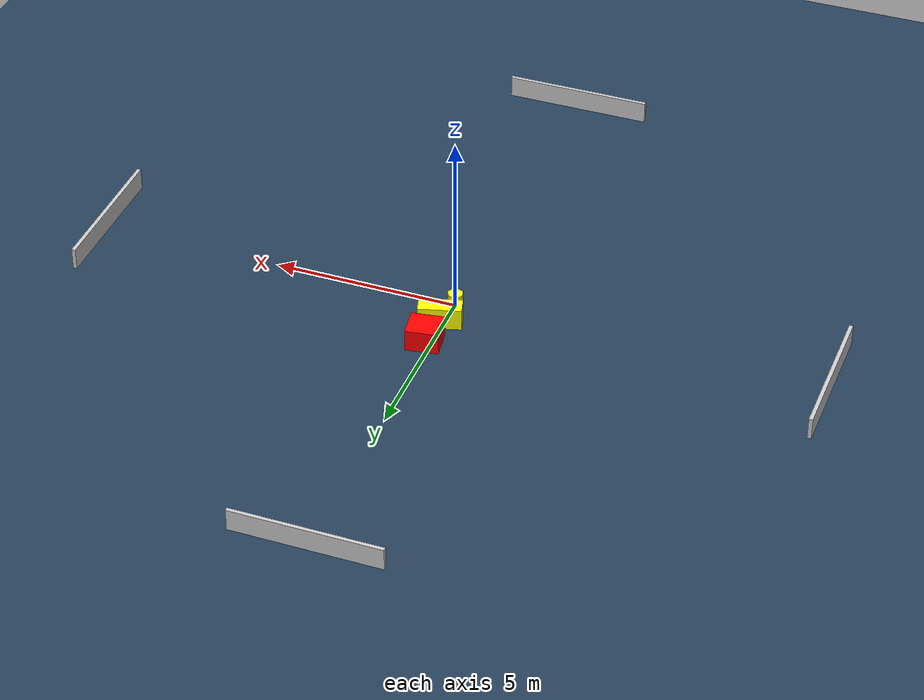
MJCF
<?xml version="1.0" ?>
<mujoco model="generated_environment">
  <option timestep="0.01" integrator="RK4" cone="elliptic"/>
  <default>
    <geom density="1"/>
  </default>
  <asset>
    <texture builtin="gradient" height="3072" name="skybox" rgb1="0.3 0.5 0.7" rgb2="0 0 0" type="skybox" width="512"/>
    <texture builtin="checker" height="300" name="groundplane" rgb1="0.2 0.3 0.4" rgb2="0.1 0.2 0.3" type="2d" width="300"/>
    <material name="groundplane" reflectance="0.2" texrepeat="5 5" texture="groundplane"/>
  </asset>
  <worldbody>
    <light dir="0 0 -1" directional="true" pos="0 0 1.5"/>
    <geom condim="3" friction="0.5 0.005 0.001" material="groundplane" name="floor" pos="0 0 0" size="0 0 0.05" type="plane"/>
    <body name="walls">
      <geom name="wall_1" condim="4" pos="-10.0 0.0 0.3" rgba="0.800000011920929 0.800000011920929 0.800000011920929 1.0" size="0.05 2.0 0.3" type="box"/>
      <geom name="wall_2" condim="4" pos="10.0 0.0 0.3" rgba="0.800000011920929 0.800000011920929 0.800000011920929 1.0" size="0.05 2.0 0.3" type="box"/>
      <geom name="wall_3" condim="4" pos="0.0 -10.0 0.3" rgba="0.800000011920929 0.800000011920929 0.800000011920929 1.0" size="2.0 0.05 0.3" type="box"/>
      <geom name="wall_4" condim="4" pos="0.0 10.0 0.3" rgba="0.800000011920929 0.800000011920929 0.800000011920929 1.0" size="2.0 0.05 0.3" type="box"/>
    </body>
    <body name="robot">
      <joint name="joint_x" type="slide" pos="0 0 0" axis="1 0 0"/>
      <joint name="joint_y" type="slide" pos="0 0 0" axis="0 1 0"/>
      <geom name="robot" type="cylinder" pos="0.0 0.0 0.2" size="0.2 0.2 0.0" mass="5.0" friction="1.0 0.005 0.0001" condim="4" rgba="1.0 1.0 0.0 1.0"/>
    </body>
    <body name="obstacle_1_movable">
      <geom name="obstacle_1_movable" condim="4" pos="0.10745002028634379 0.8338594112928096 0.3" euler="0 0 285.35758262312066" friction="0.0 0.005 0.001" rgba="1.0 1.0 0.0 1.0" size="0.2396608276230054 0.5732223102970485 0.3" type="box" mass="0.1"/>
      <joint type="free"/>
    </body>
    <body name="obstacle_2_static">
      <geom name="obstacle_2_static" condim="4" pos="0.18430343784007103 1.7377918880035603 0.3" euler="0 0 188.7221571505964" friction="0.0 0.005 0.001" rgba="1.0 0.0 0.0 1.0" size="0.43963621754924254 0.4012040124128319 0.3" type="box"/>
    </body>
  </worldbody>
  <actuator>
    <motor name="actuator_x" joint="joint_x" gear="1" ctrlrange="-1 1"/>
    <motor name="actuator_y" joint="joint_y" gear="1" ctrlrange="-1 1"/>
  </actuator>
</mujoco>
